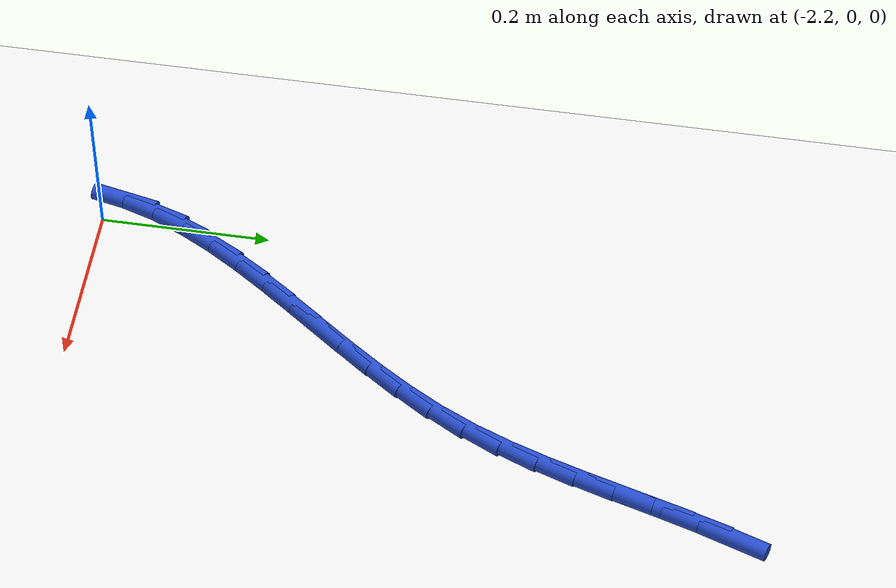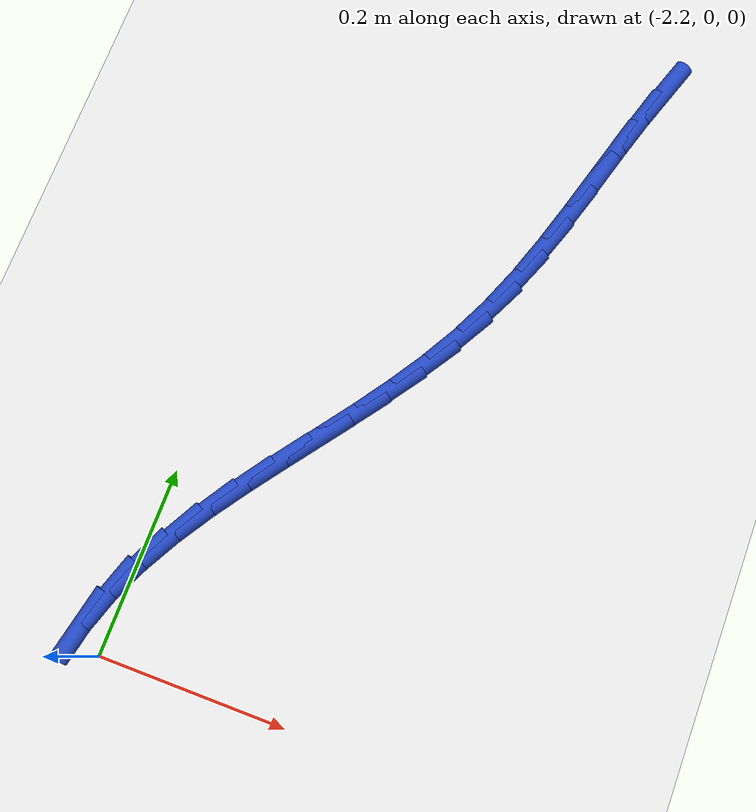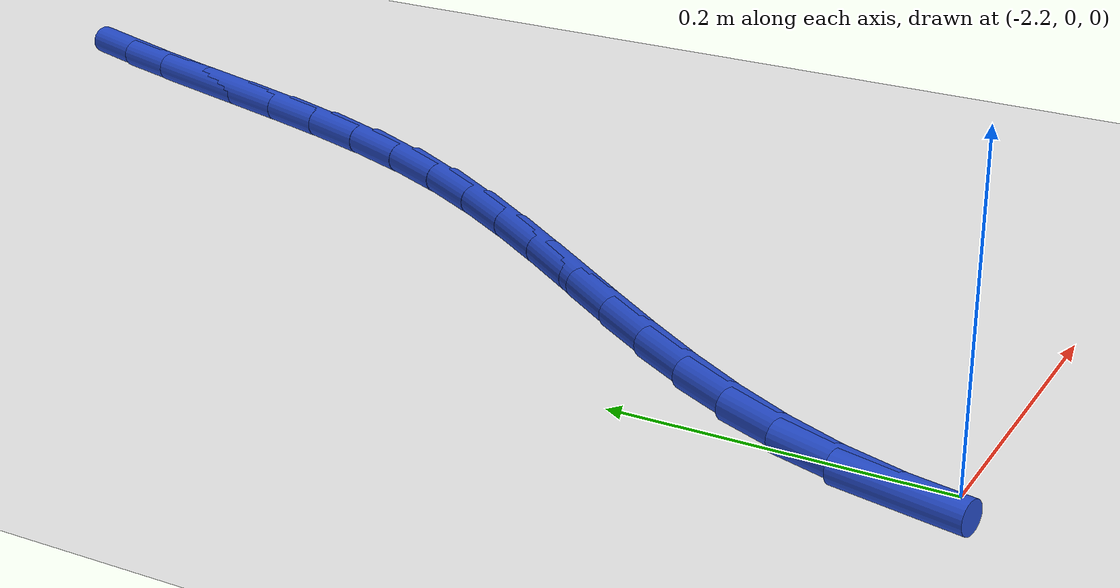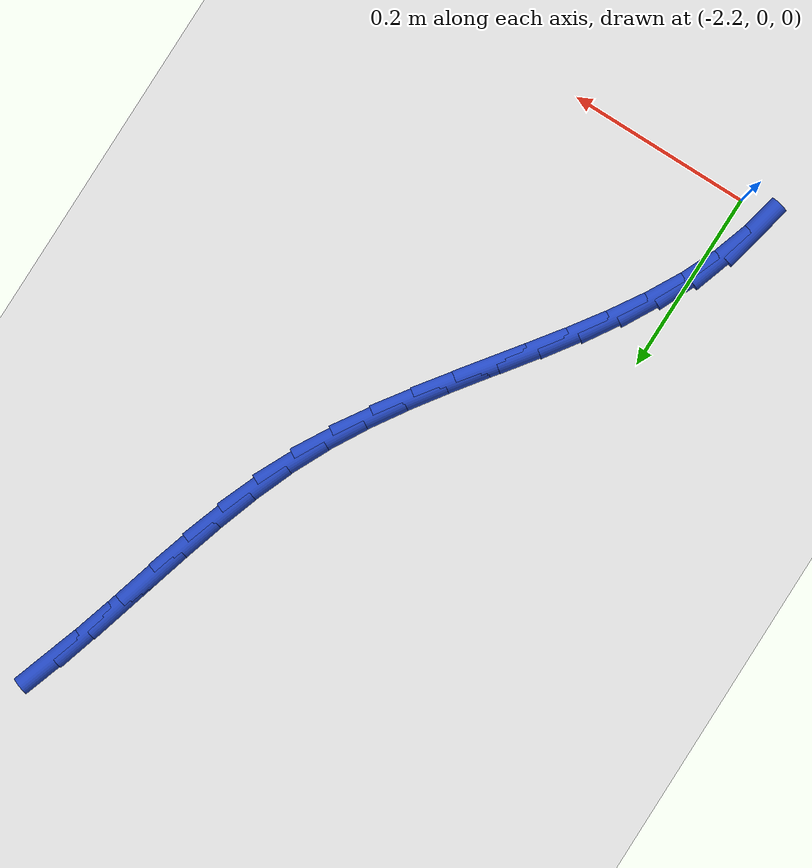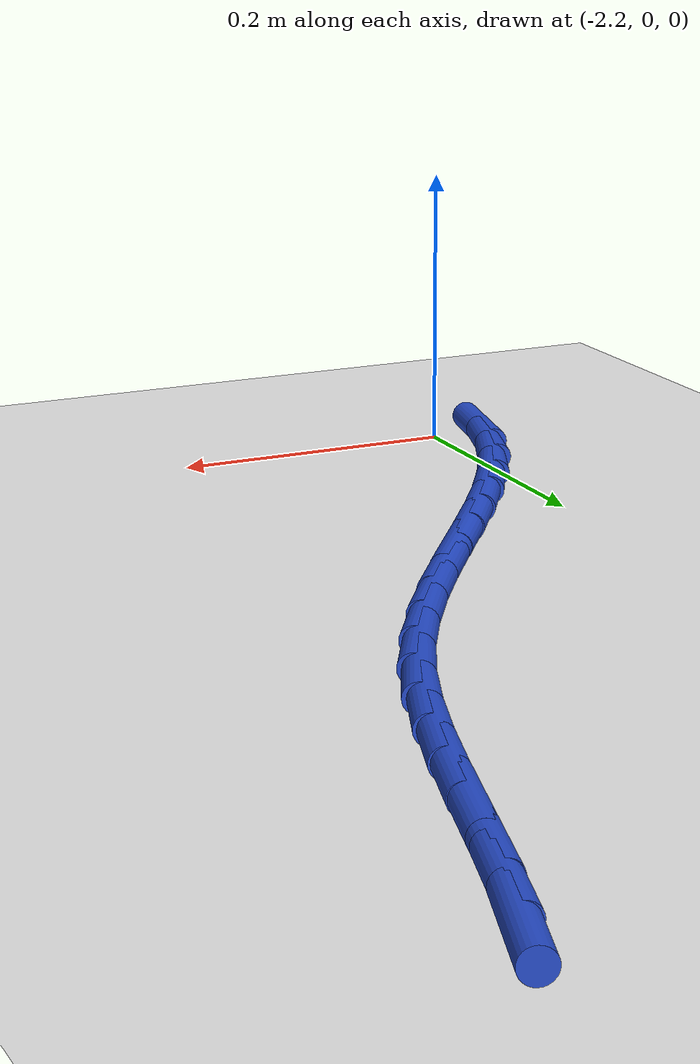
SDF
<sdf version="1.6">
 <world name="default">
  <model name="ground_plane">
   <static>1</static>
   <link name="link">
    <collision name="collision">
     <geometry><plane><normal>0 0 1</normal><size>100 100</size></plane></geometry>
     <surface><friction><ode><mu>100</mu><mu2>50</mu2></ode></friction></surface>
    </collision>
    <visual name="visual">
     <cast_shadows>0</cast_shadows>
     <geometry><plane><normal>0 0 1</normal><size>100 100</size></plane></geometry>
     <material>
      <script><uri>file://media/materials/scripts/gazebo.material</uri><name>Gazebo/WhiteGlow</name></script>
     </material>
    </visual>
   </link>
  </model>
  <model name="line">
   <link name="link_60">
    <pose>-1.8573301601565337 0.7778704797669933 0.01 0 1.57 1.2455285611351712</pose>
    <collision name="collision">
     <geometry><cylinder><radius>0.01</radius><length>0.08</length></cylinder></geometry>
    </collision>
    <visual name="visual">
     <material>
      <script><name>Gazebo/Blue</name><uri>file://media/materials/scripts/gazebo.material</uri></script>
     </material>
     <geometry><cylinder><radius>0.01</radius><length>0.08</length></cylinder></geometry>
    </visual>
   </link>
   <link name="link_61">
    <pose>-1.871383767557026 0.7361987934620216 0.01 0 1.57 1.2785485448006981</pose>
    <collision name="collision">
     <geometry><cylinder><radius>0.01</radius><length>0.08</length></cylinder></geometry>
    </collision>
    <visual name="visual">
     <material>
      <script><name>Gazebo/Blue</name><uri>file://media/materials/scripts/gazebo.material</uri></script>
     </material>
     <geometry><cylinder><radius>0.01</radius><length>0.08</length></cylinder></geometry>
    </visual>
   </link>
   <link name="link_62">
    <pose>-1.8842983353011993 0.6932736271712837 0.01 0 1.57 1.2938345710350279</pose>
    <collision name="collision">
     <geometry><cylinder><radius>0.01</radius><length>0.08</length></cylinder></geometry>
    </collision>
    <visual name="visual">
     <material>
      <script><name>Gazebo/Blue</name><uri>file://media/materials/scripts/gazebo.material</uri></script>
     </material>
     <geometry><cylinder><radius>0.01</radius><length>0.08</length></cylinder></geometry>
    </visual>
   </link>
   <link name="link_63">
    <pose>-1.8967305566319665 0.6495394268222051 0.01 0 1.57 1.2923517157480142</pose>
    <collision name="collision">
     <geometry><cylinder><radius>0.01</radius><length>0.08</length></cylinder></geometry>
    </collision>
    <visual name="visual">
     <material>
      <script><name>Gazebo/Blue</name><uri>file://media/materials/scripts/gazebo.material</uri></script>
     </material>
     <geometry><cylinder><radius>0.01</radius><length>0.08</length></cylinder></geometry>
    </visual>
   </link>
   <link name="link_64">
    <pose>-1.9093371247922413 0.605440638342212 0.01 0 1.57 1.274512764415474</pose>
    <collision name="collision">
     <geometry><cylinder><radius>0.01</radius><length>0.08</length></cylinder></geometry>
    </collision>
    <visual name="visual">
     <material>
      <script><name>Gazebo/Blue</name><uri>file://media/materials/scripts/gazebo.material</uri></script>
     </material>
     <geometry><cylinder><radius>0.01</radius><length>0.08</length></cylinder></geometry>
    </visual>
   </link>
   <link name="link_65">
    <pose>-1.9227747330249367 0.5614217076587296 0.01 0 1.57 1.240233645528943</pose>
    <collision name="collision">
     <geometry><cylinder><radius>0.01</radius><length>0.08</length></cylinder></geometry>
    </collision>
    <visual name="visual">
     <material>
      <script><name>Gazebo/Blue</name><uri>file://media/materials/scripts/gazebo.material</uri></script>
     </material>
     <geometry><cylinder><radius>0.01</radius><length>0.08</length></cylinder></geometry>
    </visual>
   </link>
   <link name="link_66">
    <pose>-1.9377000745729642 0.517927080699183 0.01 0 1.57 1.1890860469862086</pose>
    <collision name="collision">
     <geometry><cylinder><radius>0.01</radius><length>0.08</length></cylinder></geometry>
    </collision>
    <visual name="visual">
     <material>
      <script><name>Gazebo/Blue</name><uri>file://media/materials/scripts/gazebo.material</uri></script>
     </material>
     <geometry><cylinder><radius>0.01</radius><length>0.08</length></cylinder></geometry>
    </visual>
   </link>
   <link name="link_67">
    <pose>-1.9547698426792381 0.4754012033909992 0.01 0 1.57 1.1211913021205593</pose>
    <collision name="collision">
     <geometry><cylinder><radius>0.01</radius><length>0.08</length></cylinder></geometry>
    </collision>
    <visual name="visual">
     <material>
      <script><name>Gazebo/Blue</name><uri>file://media/materials/scripts/gazebo.material</uri></script>
     </material>
     <geometry><cylinder><radius>0.01</radius><length>0.08</length></cylinder></geometry>
    </visual>
   </link>
   <link name="link_68">
    <pose>-1.9746158670658112 0.43427534420811903 0.01 0 1.57 1.0520046978865423</pose>
    <collision name="collision">
     <geometry><cylinder><radius>0.01</radius><length>0.08</length></cylinder></geometry>
    </collision>
    <visual name="visual">
     <material>
      <script><name>Gazebo/Blue</name><uri>file://media/materials/scripts/gazebo.material</uri></script>
     </material>
     <geometry><cylinder><radius>0.01</radius><length>0.08</length></cylinder></geometry>
    </visual>
   </link>
   <link name="link_69">
    <pose>-1.9972415873577416 0.3946477302455275 0.01 0 1.57 0.9981070855573929</pose>
    <collision name="collision">
     <geometry><cylinder><radius>0.01</radius><length>0.08</length></cylinder></geometry>
    </collision>
    <visual name="visual">
     <material>
      <script><name>Gazebo/Blue</name><uri>file://media/materials/scripts/gazebo.material</uri></script>
     </material>
     <geometry><cylinder><radius>0.01</radius><length>0.08</length></cylinder></geometry>
    </visual>
   </link>
   <link name="link_70">
    <pose>-2.0219889448808264 0.35626600015510995 0.01 0 1.57 0.9601418257347493</pose>
    <collision name="collision">
     <geometry><cylinder><radius>0.01</radius><length>0.08</length></cylinder></geometry>
    </collision>
    <visual name="visual">
     <material>
      <script><name>Gazebo/Blue</name><uri>file://media/materials/scripts/gazebo.material</uri></script>
     </material>
     <geometry><cylinder><radius>0.01</radius><length>0.08</length></cylinder></geometry>
    </visual>
   </link>
   <link name="link_71">
    <pose>-2.048168390326459 0.318861102821748 0.01 0 1.57 0.9378567422525881</pose>
    <collision name="collision">
     <geometry><cylinder><radius>0.01</radius><length>0.08</length></cylinder></geometry>
    </collision>
    <visual name="visual">
     <material>
      <script><name>Gazebo/Blue</name><uri>file://media/materials/scripts/gazebo.material</uri></script>
     </material>
     <geometry><cylinder><radius>0.01</radius><length>0.08</length></cylinder></geometry>
    </visual>
   </link>
   <link name="link_72">
    <pose>-2.0750903743860336 0.28216398713032415 0.01 0 1.57 0.931168751454211</pose>
    <collision name="collision">
     <geometry><cylinder><radius>0.01</radius><length>0.08</length></cylinder></geometry>
    </collision>
    <visual name="visual">
     <material>
      <script><name>Gazebo/Blue</name><uri>file://media/materials/scripts/gazebo.material</uri></script>
     </material>
     <geometry><cylinder><radius>0.01</radius><length>0.08</length></cylinder></geometry>
    </visual>
   </link>
   <link name="link_73">
    <pose>-2.102065347750941 0.24590560196572 0.01 0 1.57 0.9403332175462684</pose>
    <collision name="collision">
     <geometry><cylinder><radius>0.01</radius><length>0.08</length></cylinder></geometry>
    </collision>
    <visual name="visual">
     <material>
      <script><name>Gazebo/Blue</name><uri>file://media/materials/scripts/gazebo.material</uri></script>
     </material>
     <geometry><cylinder><radius>0.01</radius><length>0.08</length></cylinder></geometry>
    </visual>
   </link>
   <link name="link_74">
    <pose>-2.1284037611125752 0.20981689621281807 0.01 0 1.57 0.9660175893733108</pose>
    <collision name="collision">
     <geometry><cylinder><radius>0.01</radius><length>0.08</length></cylinder></geometry>
    </collision>
    <visual name="visual">
     <material>
      <script><name>Gazebo/Blue</name><uri>file://media/materials/scripts/gazebo.material</uri></script>
     </material>
     <geometry><cylinder><radius>0.01</radius><length>0.08</length></cylinder></geometry>
    </visual>
   </link>
   <link name="link_75">
    <pose>-2.153416065162331 0.1736288187565002 0.01 0 1.57 1.0092746851901062</pose>
    <collision name="collision">
     <geometry><cylinder><radius>0.01</radius><length>0.08</length></cylinder></geometry>
    </collision>
    <visual name="visual">
     <material>
      <script><name>Gazebo/Blue</name><uri>file://media/materials/scripts/gazebo.material</uri></script>
     </material>
     <geometry><cylinder><radius>0.01</radius><length>0.08</length></cylinder></geometry>
    </visual>
   </link>
   <link name="link_76">
    <pose>-2.176412710591599 0.1370723184816479 0.01 0 1.57 1.0713705532278606</pose>
    <collision name="collision">
     <geometry><cylinder><radius>0.01</radius><length>0.08</length></cylinder></geometry>
    </collision>
    <visual name="visual">
     <material>
      <script><name>Gazebo/Blue</name><uri>file://media/materials/scripts/gazebo.material</uri></script>
     </material>
     <geometry><cylinder><radius>0.01</radius><length>0.08</length></cylinder></geometry>
    </visual>
   </link>
   <link name="link_77">
    <pose>-2.196704148091773 0.09987834427314392 0.01 0 1.57 1.1533804788174757</pose>
    <collision name="collision">
     <geometry><cylinder><radius>0.01</radius><length>0.08</length></cylinder></geometry>
    </collision>
    <visual name="visual">
     <material>
      <script><name>Gazebo/Blue</name><uri>file://media/materials/scripts/gazebo.material</uri></script>
     </material>
     <geometry><cylinder><radius>0.01</radius><length>0.08</length></cylinder></geometry>
    </visual>
   </link>
   <link name="link_78">
    <pose>-2.2136008283542474 0.061777845015869706 0.01 0 1.57 1.254398000918911</pose>
    <collision name="collision">
     <geometry><cylinder><radius>0.01</radius><length>0.08</length></cylinder></geometry>
    </collision>
    <visual name="visual">
     <material>
      <script><name>Gazebo/Blue</name><uri>file://media/materials/scripts/gazebo.material</uri></script>
     </material>
     <geometry><cylinder><radius>0.01</radius><length>0.08</length></cylinder></geometry>
    </visual>
   </link>
   <link name="link_79">
    <pose>-2.226453846337014 0.02251963537410324 0.01 0 1.57 1.3591356717932284</pose>
    <collision name="collision">
     <geometry><cylinder><radius>0.01</radius><length>0.08</length></cylinder></geometry>
    </collision>
    <visual name="visual">
     <material>
      <script><name>Gazebo/Blue</name><uri>file://media/materials/scripts/gazebo.material</uri></script>
     </material>
     <geometry><cylinder><radius>0.01</radius><length>0.08</length></cylinder></geometry>
    </visual>
   </link>
  </model>
 </world>
</sdf>
